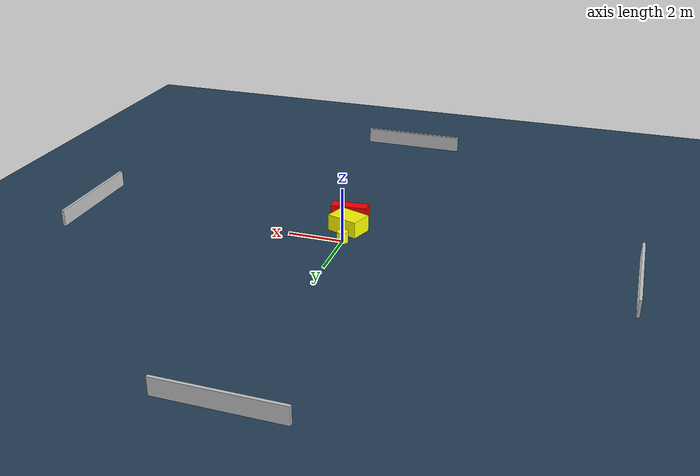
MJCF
<?xml version="1.0" ?>
<mujoco model="generated_environment">
  <option timestep="0.01" integrator="RK4" cone="elliptic"/>
  <default>
    <geom density="1"/>
  </default>
  <asset>
    <texture builtin="gradient" height="3072" name="skybox" rgb1="0.3 0.5 0.7" rgb2="0 0 0" type="skybox" width="512"/>
    <texture builtin="checker" height="300" name="groundplane" rgb1="0.2 0.3 0.4" rgb2="0.1 0.2 0.3" type="2d" width="300"/>
    <material name="groundplane" reflectance="0.2" texrepeat="5 5" texture="groundplane"/>
  </asset>
  <worldbody>
    <light dir="0 0 -1" directional="true" pos="0 0 1.5"/>
    <geom condim="3" friction="0.5 0.005 0.001" material="groundplane" name="floor" pos="0 0 0" size="0 0 0.05" type="plane"/>
    <body name="walls">
      <geom name="wall_1" condim="4" pos="-10.0 0.0 0.3" rgba="0.800000011920929 0.800000011920929 0.800000011920929 1.0" size="0.05 2.0 0.3" type="box"/>
      <geom name="wall_2" condim="4" pos="10.0 0.0 0.3" rgba="0.800000011920929 0.800000011920929 0.800000011920929 1.0" size="0.05 2.0 0.3" type="box"/>
      <geom name="wall_3" condim="4" pos="0.0 -10.0 0.3" rgba="0.800000011920929 0.800000011920929 0.800000011920929 1.0" size="2.0 0.05 0.3" type="box"/>
      <geom name="wall_4" condim="4" pos="0.0 10.0 0.3" rgba="0.800000011920929 0.800000011920929 0.800000011920929 1.0" size="2.0 0.05 0.3" type="box"/>
    </body>
    <body name="robot">
      <joint name="joint_x" type="slide" pos="0 0 0" axis="1 0 0"/>
      <joint name="joint_y" type="slide" pos="0 0 0" axis="0 1 0"/>
      <geom name="robot" type="cylinder" pos="0.0 0.0 0.2" size="0.2 0.2 0.0" mass="5.0" friction="1.0 0.005 0.0001" condim="4" rgba="1.0 1.0 0.0 1.0"/>
    </body>
    <body name="obstacle_1_movable">
      <geom name="obstacle_1_movable" condim="4" pos="0.09178408672906575 -0.9341063063790831 0.3" euler="0 0 340.9481789751862" friction="0.0 0.005 0.001" rgba="1.0 1.0 0.0 1.0" size="0.5913584785639018 0.41285748581489246 0.3" type="box" mass="0.1"/>
      <joint type="free"/>
    </body>
    <body name="obstacle_2_static">
      <geom name="obstacle_2_static" condim="4" pos="0.3181130550318908 -1.7955878494845894 0.3" euler="0 0 94.76324085921979" friction="0.0 0.005 0.001" rgba="1.0 0.0 0.0 1.0" size="0.22221636432306752 0.6721058663204633 0.3" type="box"/>
    </body>
  </worldbody>
  <actuator>
    <motor name="actuator_x" joint="joint_x" gear="1" ctrlrange="-1 1"/>
    <motor name="actuator_y" joint="joint_y" gear="1" ctrlrange="-1 1"/>
  </actuator>
</mujoco>
